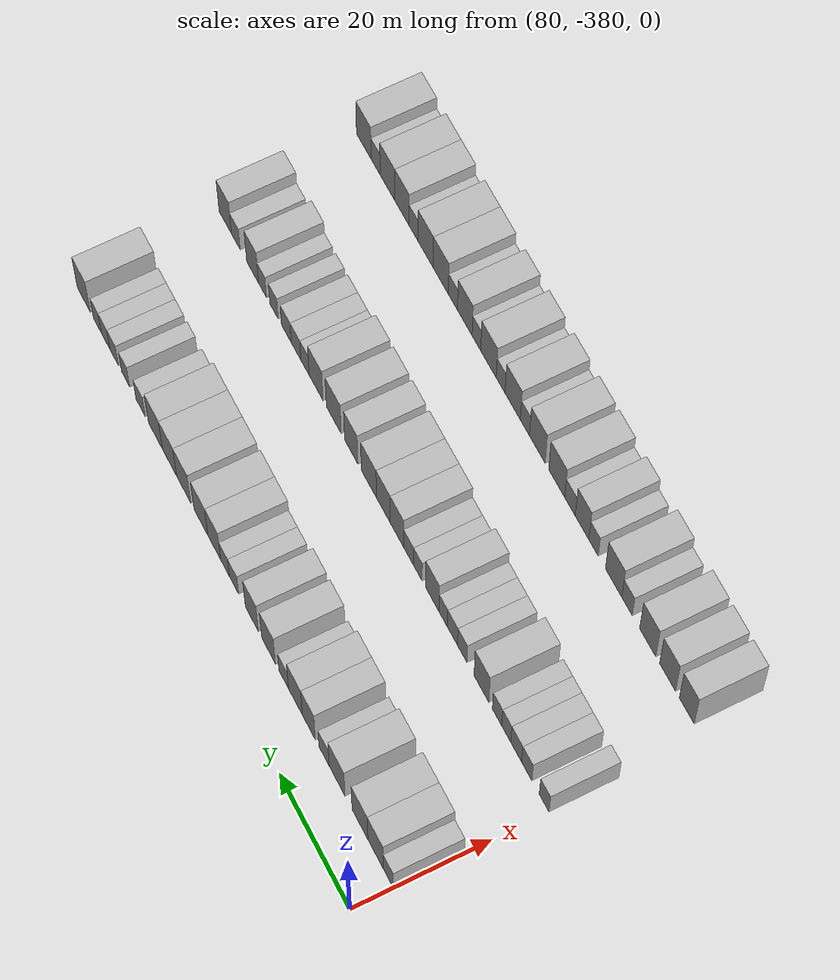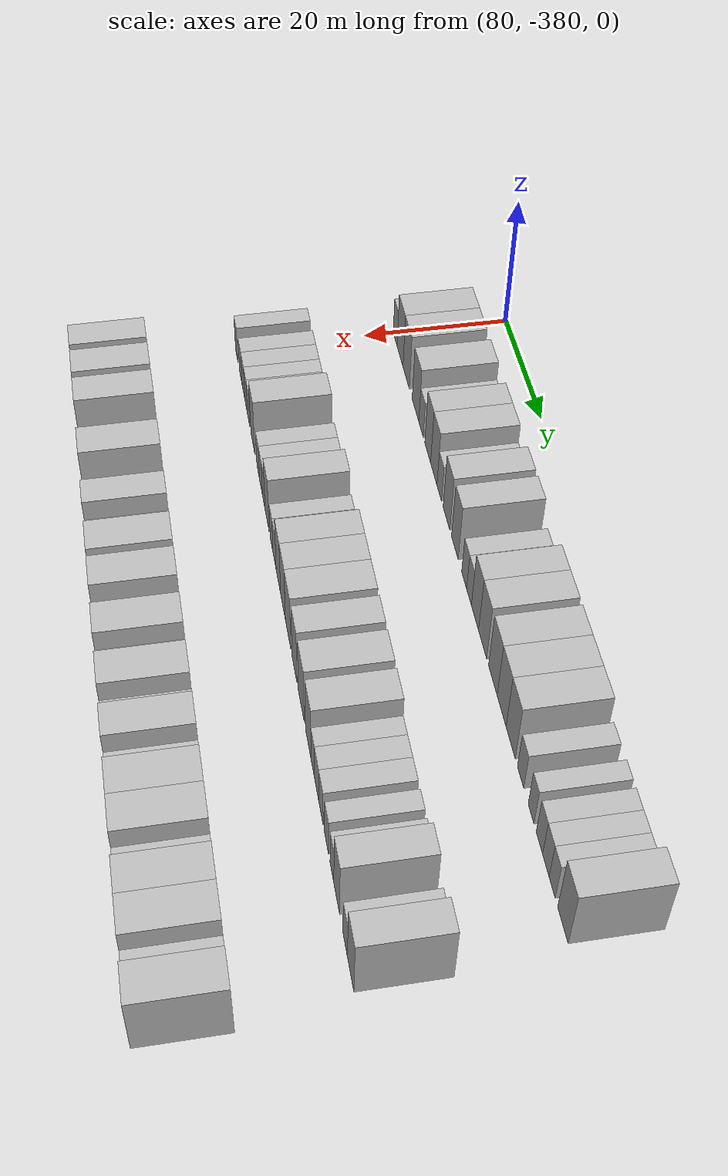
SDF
<sdf version="1.6">
 <world name="default">
  <model name="building_583">
   <static>1</static>
   <pose>91.0000 -378.6105 0 0.000000 0.000000 0.000000</pose>
   <link name="link">
    <pose>0 0 3.00 0 0 0</pose>
    <collision name="collision"><geometry><box><size>10.0000 2.7789 6.0000</size></box></geometry></collision>
    <visual name="visual">
     <cast_shadows>0</cast_shadows>
     <geometry><box><size>10.0000 2.7789 6.0000</size></box></geometry>
     <material>
      <script>
       <uri>model://HANNAS_wall/materials/scripts</uri>
       <uri>model://HANNAS_wall/materials/textures</uri>
       <name>vrc/HANNAS_wall</name>
      </script>
     </material>
    </visual>
   </link>
  </model>
  <model name="building_584">
   <static>1</static>
   <pose>91.0000 -375.0610 0 0.000000 0.000000 0.000000</pose>
   <link name="link">
    <pose>0 0 4.50 0 0 0</pose>
    <collision name="collision"><geometry><box><size>10.0000 4.3202 9.0000</size></box></geometry></collision>
    <visual name="visual">
     <cast_shadows>0</cast_shadows>
     <geometry><box><size>10.0000 4.3202 9.0000</size></box></geometry>
     <material>
      <script>
       <uri>model://HANNAS_wall/materials/scripts</uri>
       <uri>model://HANNAS_wall/materials/textures</uri>
       <name>vrc/HANNAS_wall</name>
      </script>
     </material>
    </visual>
   </link>
  </model>
  <model name="building_585">
   <static>1</static>
   <pose>91.0000 -370.6846 0 0.000000 0.000000 0.000000</pose>
   <link name="link">
    <pose>0 0 4.50 0 0 0</pose>
    <collision name="collision"><geometry><box><size>10.0000 4.4327 9.0000</size></box></geometry></collision>
    <visual name="visual">
     <cast_shadows>0</cast_shadows>
     <geometry><box><size>10.0000 4.4327 9.0000</size></box></geometry>
     <material>
      <script>
       <uri>model://HANNAS_wall/materials/scripts</uri>
       <uri>model://HANNAS_wall/materials/textures</uri>
       <name>vrc/HANNAS_wall</name>
      </script>
     </material>
    </visual>
   </link>
  </model>
  <model name="building_586">
   <static>1</static>
   <pose>91.0000 -364.2207 0 0.000000 0.000000 0.000000</pose>
   <link name="link">
    <pose>0 0 4.50 0 0 0</pose>
    <collision name="collision"><geometry><box><size>10.0000 4.4950 9.0000</size></box></geometry></collision>
    <visual name="visual">
     <cast_shadows>0</cast_shadows>
     <geometry><box><size>10.0000 4.4950 9.0000</size></box></geometry>
     <material>
      <script>
       <uri>model://HANNAS_wall/materials/scripts</uri>
       <uri>model://HANNAS_wall/materials/textures</uri>
       <name>vrc/HANNAS_wall</name>
      </script>
     </material>
    </visual>
   </link>
  </model>
  <model name="building_587">
   <static>1</static>
   <pose>91.0000 -360.5055 0 0.000000 0.000000 0.000000</pose>
   <link name="link">
    <pose>0 0 3.00 0 0 0</pose>
    <collision name="collision"><geometry><box><size>10.0000 2.9354 6.0000</size></box></geometry></collision>
    <visual name="visual">
     <cast_shadows>0</cast_shadows>
     <geometry><box><size>10.0000 2.9354 6.0000</size></box></geometry>
     <material>
      <script>
       <uri>model://HANNAS_wall/materials/scripts</uri>
       <uri>model://HANNAS_wall/materials/textures</uri>
       <name>vrc/HANNAS_wall</name>
      </script>
     </material>
    </visual>
   </link>
  </model>
  <model name="building_588">
   <static>1</static>
   <pose>91.0000 -356.1719 0 0.000000 0.000000 0.000000</pose>
   <link name="link">
    <pose>0 0 4.50 0 0 0</pose>
    <collision name="collision"><geometry><box><size>10.0000 3.7318 9.0000</size></box></geometry></collision>
    <visual name="visual">
     <cast_shadows>0</cast_shadows>
     <geometry><box><size>10.0000 3.7318 9.0000</size></box></geometry>
     <material>
      <script>
       <uri>model://HANNAS_wall/materials/scripts</uri>
       <uri>model://HANNAS_wall/materials/textures</uri>
       <name>vrc/HANNAS_wall</name>
      </script>
     </material>
    </visual>
   </link>
  </model>
  <model name="building_589">
   <static>1</static>
   <pose>91.0000 -352.3022 0 0.000000 0.000000 0.000000</pose>
   <link name="link">
    <pose>0 0 4.50 0 0 0</pose>
    <collision name="collision"><geometry><box><size>10.0000 4.0078 9.0000</size></box></geometry></collision>
    <visual name="visual">
     <cast_shadows>0</cast_shadows>
     <geometry><box><size>10.0000 4.0078 9.0000</size></box></geometry>
     <material>
      <script>
       <uri>model://HANNAS_wall/materials/scripts</uri>
       <uri>model://HANNAS_wall/materials/textures</uri>
       <name>vrc/HANNAS_wall</name>
      </script>
     </material>
    </visual>
   </link>
  </model>
  <model name="building_590">
   <static>1</static>
   <pose>91.0000 -348.8985 0 0.000000 0.000000 0.000000</pose>
   <link name="link">
    <pose>0 0 3.00 0 0 0</pose>
    <collision name="collision"><geometry><box><size>10.0000 2.7997 6.0000</size></box></geometry></collision>
    <visual name="visual">
     <cast_shadows>0</cast_shadows>
     <geometry><box><size>10.0000 2.7997 6.0000</size></box></geometry>
     <material>
      <script>
       <uri>model://HANNAS_wall/materials/scripts</uri>
       <uri>model://HANNAS_wall/materials/textures</uri>
       <name>vrc/HANNAS_wall</name>
      </script>
     </material>
    </visual>
   </link>
  </model>
  <model name="building_591">
   <static>1</static>
   <pose>91.0000 -344.4958 0 0.000000 0.000000 0.000000</pose>
   <link name="link">
    <pose>0 0 4.50 0 0 0</pose>
    <collision name="collision"><geometry><box><size>10.0000 4.0057 9.0000</size></box></geometry></collision>
    <visual name="visual">
     <cast_shadows>0</cast_shadows>
     <geometry><box><size>10.0000 4.0057 9.0000</size></box></geometry>
     <material>
      <script>
       <uri>model://HANNAS_wall/materials/scripts</uri>
       <uri>model://HANNAS_wall/materials/textures</uri>
       <name>vrc/HANNAS_wall</name>
      </script>
     </material>
    </visual>
   </link>
  </model>
  <model name="building_592">
   <static>1</static>
   <pose>91.0000 -339.5777 0 0.000000 0.000000 0.000000</pose>
   <link name="link">
    <pose>0 0 4.50 0 0 0</pose>
    <collision name="collision"><geometry><box><size>10.0000 3.8304 9.0000</size></box></geometry></collision>
    <visual name="visual">
     <cast_shadows>0</cast_shadows>
     <geometry><box><size>10.0000 3.8304 9.0000</size></box></geometry>
     <material>
      <script>
       <uri>model://HANNAS_wall/materials/scripts</uri>
       <uri>model://HANNAS_wall/materials/textures</uri>
       <name>vrc/HANNAS_wall</name>
      </script>
     </material>
    </visual>
   </link>
  </model>
  <model name="building_593">
   <static>1</static>
   <pose>91.0000 -334.2949 0 0.000000 0.000000 0.000000</pose>
   <link name="link">
    <pose>0 0 3.00 0 0 0</pose>
    <collision name="collision"><geometry><box><size>10.0000 2.7351 6.0000</size></box></geometry></collision>
    <visual name="visual">
     <cast_shadows>0</cast_shadows>
     <geometry><box><size>10.0000 2.7351 6.0000</size></box></geometry>
     <material>
      <script>
       <uri>model://HANNAS_wall/materials/scripts</uri>
       <uri>model://HANNAS_wall/materials/textures</uri>
       <name>vrc/HANNAS_wall</name>
      </script>
     </material>
    </visual>
   </link>
  </model>
  <model name="building_594">
   <static>1</static>
   <pose>91.0000 -331.6279 0 0.000000 0.000000 0.000000</pose>
   <link name="link">
    <pose>0 0 3.00 0 0 0</pose>
    <collision name="collision"><geometry><box><size>10.0000 2.5988 6.0000</size></box></geometry></collision>
    <visual name="visual">
     <cast_shadows>0</cast_shadows>
     <geometry><box><size>10.0000 2.5988 6.0000</size></box></geometry>
     <material>
      <script>
       <uri>model://HANNAS_wall/materials/scripts</uri>
       <uri>model://HANNAS_wall/materials/textures</uri>
       <name>vrc/HANNAS_wall</name>
      </script>
     </material>
    </visual>
   </link>
  </model>
  <model name="building_595">
   <static>1</static>
   <pose>91.0000 -328.4108 0 0.000000 0.000000 0.000000</pose>
   <link name="link">
    <pose>0 0 4.50 0 0 0</pose>
    <collision name="collision"><geometry><box><size>10.0000 3.8354 9.0000</size></box></geometry></collision>
    <visual name="visual">
     <cast_shadows>0</cast_shadows>
     <geometry><box><size>10.0000 3.8354 9.0000</size></box></geometry>
     <material>
      <script>
       <uri>model://HANNAS_wall/materials/scripts</uri>
       <uri>model://HANNAS_wall/materials/textures</uri>
       <name>vrc/HANNAS_wall</name>
      </script>
     </material>
    </visual>
   </link>
  </model>
  <model name="building_596">
   <static>1</static>
   <pose>91.0000 -324.3855 0 0.000000 0.000000 0.000000</pose>
   <link name="link">
    <pose>0 0 4.50 0 0 0</pose>
    <collision name="collision"><geometry><box><size>10.0000 4.2151 9.0000</size></box></geometry></collision>
    <visual name="visual">
     <cast_shadows>0</cast_shadows>
     <geometry><box><size>10.0000 4.2151 9.0000</size></box></geometry>
     <material>
      <script>
       <uri>model://HANNAS_wall/materials/scripts</uri>
       <uri>model://HANNAS_wall/materials/textures</uri>
       <name>vrc/HANNAS_wall</name>
      </script>
     </material>
    </visual>
   </link>
  </model>
  <model name="building_597">
   <static>1</static>
   <pose>91.0000 -319.1344 0 0.000000 0.000000 0.000000</pose>
   <link name="link">
    <pose>0 0 4.50 0 0 0</pose>
    <collision name="collision"><geometry><box><size>10.0000 4.2870 9.0000</size></box></geometry></collision>
    <visual name="visual">
     <cast_shadows>0</cast_shadows>
     <geometry><box><size>10.0000 4.2870 9.0000</size></box></geometry>
     <material>
      <script>
       <uri>model://HANNAS_wall/materials/scripts</uri>
       <uri>model://HANNAS_wall/materials/textures</uri>
       <name>vrc/HANNAS_wall</name>
      </script>
     </material>
    </visual>
   </link>
  </model>
  <model name="building_598">
   <static>1</static>
   <pose>91.0000 -314.8249 0 0.000000 0.000000 0.000000</pose>
   <link name="link">
    <pose>0 0 4.50 0 0 0</pose>
    <collision name="collision"><geometry><box><size>10.0000 4.3320 9.0000</size></box></geometry></collision>
    <visual name="visual">
     <cast_shadows>0</cast_shadows>
     <geometry><box><size>10.0000 4.3320 9.0000</size></box></geometry>
     <material>
      <script>
       <uri>model://HANNAS_wall/materials/scripts</uri>
       <uri>model://HANNAS_wall/materials/textures</uri>
       <name>vrc/HANNAS_wall</name>
      </script>
     </material>
    </visual>
   </link>
  </model>
  <model name="building_599">
   <static>1</static>
   <pose>91.0000 -310.4921 0 0.000000 0.000000 0.000000</pose>
   <link name="link">
    <pose>0 0 4.50 0 0 0</pose>
    <collision name="collision"><geometry><box><size>10.0000 4.3336 9.0000</size></box></geometry></collision>
    <visual name="visual">
     <cast_shadows>0</cast_shadows>
     <geometry><box><size>10.0000 4.3336 9.0000</size></box></geometry>
     <material>
      <script>
       <uri>model://HANNAS_wall/materials/scripts</uri>
       <uri>model://HANNAS_wall/materials/textures</uri>
       <name>vrc/HANNAS_wall</name>
      </script>
     </material>
    </visual>
   </link>
  </model>
  <model name="building_600">
   <static>1</static>
   <pose>91.0000 -305.9015 0 0.000000 0.000000 0.000000</pose>
   <link name="link">
    <pose>0 0 3.00 0 0 0</pose>
    <collision name="collision"><geometry><box><size>10.0000 2.8478 6.0000</size></box></geometry></collision>
    <visual name="visual">
     <cast_shadows>0</cast_shadows>
     <geometry><box><size>10.0000 2.8478 6.0000</size></box></geometry>
     <material>
      <script>
       <uri>model://HANNAS_wall/materials/scripts</uri>
       <uri>model://HANNAS_wall/materials/textures</uri>
       <name>vrc/HANNAS_wall</name>
      </script>
     </material>
    </visual>
   </link>
  </model>
  <model name="building_601">
   <static>1</static>
   <pose>91.0000 -301.2275 0 0.000000 0.000000 0.000000</pose>
   <link name="link">
    <pose>0 0 3.00 0 0 0</pose>
    <collision name="collision"><geometry><box><size>10.0000 2.5003 6.0000</size></box></geometry></collision>
    <visual name="visual">
     <cast_shadows>0</cast_shadows>
     <geometry><box><size>10.0000 2.5003 6.0000</size></box></geometry>
     <material>
      <script>
       <uri>model://HANNAS_wall/materials/scripts</uri>
       <uri>model://HANNAS_wall/materials/textures</uri>
       <name>vrc/HANNAS_wall</name>
      </script>
     </material>
    </visual>
   </link>
  </model>
  <model name="building_602">
   <static>1</static>
   <pose>91.0000 -297.6307 0 0.000000 0.000000 0.000000</pose>
   <link name="link">
    <pose>0 0 3.00 0 0 0</pose>
    <collision name="collision"><geometry><box><size>10.0000 2.6932 6.0000</size></box></geometry></collision>
    <visual name="visual">
     <cast_shadows>0</cast_shadows>
     <geometry><box><size>10.0000 2.6932 6.0000</size></box></geometry>
     <material>
      <script>
       <uri>model://HANNAS_wall/materials/scripts</uri>
       <uri>model://HANNAS_wall/materials/textures</uri>
       <name>vrc/HANNAS_wall</name>
      </script>
     </material>
    </visual>
   </link>
  </model>
  <model name="building_603">
   <static>1</static>
   <pose>91.0000 -294.9295 0 0.000000 0.000000 0.000000</pose>
   <link name="link">
    <pose>0 0 3.00 0 0 0</pose>
    <collision name="collision"><geometry><box><size>10.0000 2.7093 6.0000</size></box></geometry></collision>
    <visual name="visual">
     <cast_shadows>0</cast_shadows>
     <geometry><box><size>10.0000 2.7093 6.0000</size></box></geometry>
     <material>
      <script>
       <uri>model://HANNAS_wall/materials/scripts</uri>
       <uri>model://HANNAS_wall/materials/textures</uri>
       <name>vrc/HANNAS_wall</name>
      </script>
     </material>
    </visual>
   </link>
  </model>
  <model name="building_604">
   <static>1</static>
   <pose>91.0000 -292.3316 0 0.000000 0.000000 0.000000</pose>
   <link name="link">
    <pose>0 0 3.00 0 0 0</pose>
    <collision name="collision"><geometry><box><size>10.0000 2.4865 6.0000</size></box></geometry></collision>
    <visual name="visual">
     <cast_shadows>0</cast_shadows>
     <geometry><box><size>10.0000 2.4865 6.0000</size></box></geometry>
     <material>
      <script>
       <uri>model://HANNAS_wall/materials/scripts</uri>
       <uri>model://HANNAS_wall/materials/textures</uri>
       <name>vrc/HANNAS_wall</name>
      </script>
     </material>
    </visual>
   </link>
  </model>
  <model name="building_605">
   <static>1</static>
   <pose>91.0000 -288.0109 0 0.000000 0.000000 0.000000</pose>
   <link name="link">
    <pose>0 0 4.50 0 0 0</pose>
    <collision name="collision"><geometry><box><size>10.0000 4.1550 9.0000</size></box></geometry></collision>
    <visual name="visual">
     <cast_shadows>0</cast_shadows>
     <geometry><box><size>10.0000 4.1550 9.0000</size></box></geometry>
     <material>
      <script>
       <uri>model://HANNAS_wall/materials/scripts</uri>
       <uri>model://HANNAS_wall/materials/textures</uri>
       <name>vrc/HANNAS_wall</name>
      </script>
     </material>
    </visual>
   </link>
  </model>
  <model name="building_785">
   <static>1</static>
   <pose>113.0000 -378.6783 0 0.000000 0.000000 0.000000</pose>
   <link name="link">
    <pose>0 0 3.00 0 0 0</pose>
    <collision name="collision"><geometry><box><size>10.0000 2.6433 6.0000</size></box></geometry></collision>
    <visual name="visual">
     <cast_shadows>0</cast_shadows>
     <geometry><box><size>10.0000 2.6433 6.0000</size></box></geometry>
     <material>
      <script>
       <uri>model://HANNAS_wall/materials/scripts</uri>
       <uri>model://HANNAS_wall/materials/textures</uri>
       <name>vrc/HANNAS_wall</name>
      </script>
     </material>
    </visual>
   </link>
  </model>
  <model name="building_786">
   <static>1</static>
   <pose>113.0000 -373.9568 0 0.000000 0.000000 0.000000</pose>
   <link name="link">
    <pose>0 0 3.00 0 0 0</pose>
    <collision name="collision"><geometry><box><size>10.0000 2.7998 6.0000</size></box></geometry></collision>
    <visual name="visual">
     <cast_shadows>0</cast_shadows>
     <geometry><box><size>10.0000 2.7998 6.0000</size></box></geometry>
     <material>
      <script>
       <uri>model://HANNAS_wall/materials/scripts</uri>
       <uri>model://HANNAS_wall/materials/textures</uri>
       <name>vrc/HANNAS_wall</name>
      </script>
     </material>
    </visual>
   </link>
  </model>
  <model name="building_787">
   <static>1</static>
   <pose>113.0000 -371.0708 0 0.000000 0.000000 0.000000</pose>
   <link name="link">
    <pose>0 0 3.00 0 0 0</pose>
    <collision name="collision"><geometry><box><size>10.0000 2.9720 6.0000</size></box></geometry></collision>
    <visual name="visual">
     <cast_shadows>0</cast_shadows>
     <geometry><box><size>10.0000 2.9720 6.0000</size></box></geometry>
     <material>
      <script>
       <uri>model://HANNAS_wall/materials/scripts</uri>
       <uri>model://HANNAS_wall/materials/textures</uri>
       <name>vrc/HANNAS_wall</name>
      </script>
     </material>
    </visual>
   </link>
  </model>
  <model name="building_788">
   <static>1</static>
   <pose>113.0000 -368.3384 0 0.000000 0.000000 0.000000</pose>
   <link name="link">
    <pose>0 0 3.00 0 0 0</pose>
    <collision name="collision"><geometry><box><size>10.0000 2.4929 6.0000</size></box></geometry></collision>
    <visual name="visual">
     <cast_shadows>0</cast_shadows>
     <geometry><box><size>10.0000 2.4929 6.0000</size></box></geometry>
     <material>
      <script>
       <uri>model://HANNAS_wall/materials/scripts</uri>
       <uri>model://HANNAS_wall/materials/textures</uri>
       <name>vrc/HANNAS_wall</name>
      </script>
     </material>
    </visual>
   </link>
  </model>
  <model name="building_789">
   <static>1</static>
   <pose>113.0000 -365.8127 0 0.000000 0.000000 0.000000</pose>
   <link name="link">
    <pose>0 0 3.00 0 0 0</pose>
    <collision name="collision"><geometry><box><size>10.0000 2.5584 6.0000</size></box></geometry></collision>
    <visual name="visual">
     <cast_shadows>0</cast_shadows>
     <geometry><box><size>10.0000 2.5584 6.0000</size></box></geometry>
     <material>
      <script>
       <uri>model://HANNAS_wall/materials/scripts</uri>
       <uri>model://HANNAS_wall/materials/textures</uri>
       <name>vrc/HANNAS_wall</name>
      </script>
     </material>
    </visual>
   </link>
  </model>
  <model name="building_790">
   <static>1</static>
   <pose>113.0000 -361.4874 0 0.000000 0.000000 0.000000</pose>
   <link name="link">
    <pose>0 0 4.50 0 0 0</pose>
    <collision name="collision"><geometry><box><size>10.0000 4.0921 9.0000</size></box></geometry></collision>
    <visual name="visual">
     <cast_shadows>0</cast_shadows>
     <geometry><box><size>10.0000 4.0921 9.0000</size></box></geometry>
     <material>
      <script>
       <uri>model://HANNAS_wall/materials/scripts</uri>
       <uri>model://HANNAS_wall/materials/textures</uri>
       <name>vrc/HANNAS_wall</name>
      </script>
     </material>
    </visual>
   </link>
  </model>
  <model name="building_791">
   <static>1</static>
   <pose>113.0000 -356.1126 0 0.000000 0.000000 0.000000</pose>
   <link name="link">
    <pose>0 0 3.00 0 0 0</pose>
    <collision name="collision"><geometry><box><size>10.0000 2.6574 6.0000</size></box></geometry></collision>
    <visual name="visual">
     <cast_shadows>0</cast_shadows>
     <geometry><box><size>10.0000 2.6574 6.0000</size></box></geometry>
     <material>
      <script>
       <uri>model://HANNAS_wall/materials/scripts</uri>
       <uri>model://HANNAS_wall/materials/textures</uri>
       <name>vrc/HANNAS_wall</name>
      </script>
     </material>
    </visual>
   </link>
  </model>
  <model name="building_792">
   <static>1</static>
   <pose>113.0000 -353.3888 0 0.000000 0.000000 0.000000</pose>
   <link name="link">
    <pose>0 0 3.00 0 0 0</pose>
    <collision name="collision"><geometry><box><size>10.0000 2.7902 6.0000</size></box></geometry></collision>
    <visual name="visual">
     <cast_shadows>0</cast_shadows>
     <geometry><box><size>10.0000 2.7902 6.0000</size></box></geometry>
     <material>
      <script>
       <uri>model://HANNAS_wall/materials/scripts</uri>
       <uri>model://HANNAS_wall/materials/textures</uri>
       <name>vrc/HANNAS_wall</name>
      </script>
     </material>
    </visual>
   </link>
  </model>
  <model name="building_793">
   <static>1</static>
   <pose>113.0000 -350.7905 0 0.000000 0.000000 0.000000</pose>
   <link name="link">
    <pose>0 0 3.00 0 0 0</pose>
    <collision name="collision"><geometry><box><size>10.0000 2.4065 6.0000</size></box></geometry></collision>
    <visual name="visual">
     <cast_shadows>0</cast_shadows>
     <geometry><box><size>10.0000 2.4065 6.0000</size></box></geometry>
     <material>
      <script>
       <uri>model://HANNAS_wall/materials/scripts</uri>
       <uri>model://HANNAS_wall/materials/textures</uri>
       <name>vrc/HANNAS_wall</name>
      </script>
     </material>
    </visual>
   </link>
  </model>
  <model name="building_794">
   <static>1</static>
   <pose>113.0000 -347.6837 0 0.000000 0.000000 0.000000</pose>
   <link name="link">
    <pose>0 0 4.50 0 0 0</pose>
    <collision name="collision"><geometry><box><size>10.0000 3.8071 9.0000</size></box></geometry></collision>
    <visual name="visual">
     <cast_shadows>0</cast_shadows>
     <geometry><box><size>10.0000 3.8071 9.0000</size></box></geometry>
     <material>
      <script>
       <uri>model://HANNAS_wall/materials/scripts</uri>
       <uri>model://HANNAS_wall/materials/textures</uri>
       <name>vrc/HANNAS_wall</name>
      </script>
     </material>
    </visual>
   </link>
  </model>
  <model name="building_795">
   <static>1</static>
   <pose>113.0000 -343.5592 0 0.000000 0.000000 0.000000</pose>
   <link name="link">
    <pose>0 0 3.00 0 0 0</pose>
    <collision name="collision"><geometry><box><size>10.0000 2.4420 6.0000</size></box></geometry></collision>
    <visual name="visual">
     <cast_shadows>0</cast_shadows>
     <geometry><box><size>10.0000 2.4420 6.0000</size></box></geometry>
     <material>
      <script>
       <uri>model://HANNAS_wall/materials/scripts</uri>
       <uri>model://HANNAS_wall/materials/textures</uri>
       <name>vrc/HANNAS_wall</name>
      </script>
     </material>
    </visual>
   </link>
  </model>
  <model name="building_796">
   <static>1</static>
   <pose>113.0000 -340.9144 0 0.000000 0.000000 0.000000</pose>
   <link name="link">
    <pose>0 0 3.00 0 0 0</pose>
    <collision name="collision"><geometry><box><size>10.0000 2.8476 6.0000</size></box></geometry></collision>
    <visual name="visual">
     <cast_shadows>0</cast_shadows>
     <geometry><box><size>10.0000 2.8476 6.0000</size></box></geometry>
     <material>
      <script>
       <uri>model://HANNAS_wall/materials/scripts</uri>
       <uri>model://HANNAS_wall/materials/textures</uri>
       <name>vrc/HANNAS_wall</name>
      </script>
     </material>
    </visual>
   </link>
  </model>
  <model name="building_797">
   <static>1</static>
   <pose>113.0000 -337.5703 0 0.000000 0.000000 0.000000</pose>
   <link name="link">
    <pose>0 0 4.50 0 0 0</pose>
    <collision name="collision"><geometry><box><size>10.0000 3.8406 9.0000</size></box></geometry></collision>
    <visual name="visual">
     <cast_shadows>0</cast_shadows>
     <geometry><box><size>10.0000 3.8406 9.0000</size></box></geometry>
     <material>
      <script>
       <uri>model://HANNAS_wall/materials/scripts</uri>
       <uri>model://HANNAS_wall/materials/textures</uri>
       <name>vrc/HANNAS_wall</name>
      </script>
     </material>
    </visual>
   </link>
  </model>
  <model name="building_798">
   <static>1</static>
   <pose>113.0000 -333.6425 0 0.000000 0.000000 0.000000</pose>
   <link name="link">
    <pose>0 0 4.50 0 0 0</pose>
    <collision name="collision"><geometry><box><size>10.0000 4.0149 9.0000</size></box></geometry></collision>
    <visual name="visual">
     <cast_shadows>0</cast_shadows>
     <geometry><box><size>10.0000 4.0149 9.0000</size></box></geometry>
     <material>
      <script>
       <uri>model://HANNAS_wall/materials/scripts</uri>
       <uri>model://HANNAS_wall/materials/textures</uri>
       <name>vrc/HANNAS_wall</name>
      </script>
     </material>
    </visual>
   </link>
  </model>
  <model name="building_799">
   <static>1</static>
   <pose>113.0000 -329.4220 0 0.000000 0.000000 0.000000</pose>
   <link name="link">
    <pose>0 0 4.50 0 0 0</pose>
    <collision name="collision"><geometry><box><size>10.0000 4.4261 9.0000</size></box></geometry></collision>
    <visual name="visual">
     <cast_shadows>0</cast_shadows>
     <geometry><box><size>10.0000 4.4261 9.0000</size></box></geometry>
     <material>
      <script>
       <uri>model://HANNAS_wall/materials/scripts</uri>
       <uri>model://HANNAS_wall/materials/textures</uri>
       <name>vrc/HANNAS_wall</name>
      </script>
     </material>
    </visual>
   </link>
  </model>
  <model name="building_800">
   <static>1</static>
   <pose>113.0000 -324.2468 0 0.000000 0.000000 0.000000</pose>
   <link name="link">
    <pose>0 0 4.50 0 0 0</pose>
    <collision name="collision"><geometry><box><size>10.0000 3.9243 9.0000</size></box></geometry></collision>
    <visual name="visual">
     <cast_shadows>0</cast_shadows>
     <geometry><box><size>10.0000 3.9243 9.0000</size></box></geometry>
     <material>
      <script>
       <uri>model://HANNAS_wall/materials/scripts</uri>
       <uri>model://HANNAS_wall/materials/textures</uri>
       <name>vrc/HANNAS_wall</name>
      </script>
     </material>
    </visual>
   </link>
  </model>
  <model name="building_801">
   <static>1</static>
   <pose>113.0000 -319.0873 0 0.000000 0.000000 0.000000</pose>
   <link name="link">
    <pose>0 0 4.50 0 0 0</pose>
    <collision name="collision"><geometry><box><size>10.0000 4.3948 9.0000</size></box></geometry></collision>
    <visual name="visual">
     <cast_shadows>0</cast_shadows>
     <geometry><box><size>10.0000 4.3948 9.0000</size></box></geometry>
     <material>
      <script>
       <uri>model://HANNAS_wall/materials/scripts</uri>
       <uri>model://HANNAS_wall/materials/textures</uri>
       <name>vrc/HANNAS_wall</name>
      </script>
     </material>
    </visual>
   </link>
  </model>
  <model name="building_802">
   <static>1</static>
   <pose>113.0000 -313.8123 0 0.000000 0.000000 0.000000</pose>
   <link name="link">
    <pose>0 0 4.50 0 0 0</pose>
    <collision name="collision"><geometry><box><size>10.0000 4.1552 9.0000</size></box></geometry></collision>
    <visual name="visual">
     <cast_shadows>0</cast_shadows>
     <geometry><box><size>10.0000 4.1552 9.0000</size></box></geometry>
     <material>
      <script>
       <uri>model://HANNAS_wall/materials/scripts</uri>
       <uri>model://HANNAS_wall/materials/textures</uri>
       <name>vrc/HANNAS_wall</name>
      </script>
     </material>
    </visual>
   </link>
  </model>
  <model name="building_803">
   <static>1</static>
   <pose>113.0000 -310.4940 0 0.000000 0.000000 0.000000</pose>
   <link name="link">
    <pose>0 0 3.00 0 0 0</pose>
    <collision name="collision"><geometry><box><size>10.0000 2.4814 6.0000</size></box></geometry></collision>
    <visual name="visual">
     <cast_shadows>0</cast_shadows>
     <geometry><box><size>10.0000 2.4814 6.0000</size></box></geometry>
     <material>
      <script>
       <uri>model://HANNAS_wall/materials/scripts</uri>
       <uri>model://HANNAS_wall/materials/textures</uri>
       <name>vrc/HANNAS_wall</name>
      </script>
     </material>
    </visual>
   </link>
  </model>
  <model name="building_804">
   <static>1</static>
   <pose>113.0000 -307.7987 0 0.000000 0.000000 0.000000</pose>
   <link name="link">
    <pose>0 0 3.00 0 0 0</pose>
    <collision name="collision"><geometry><box><size>10.0000 2.9092 6.0000</size></box></geometry></collision>
    <visual name="visual">
     <cast_shadows>0</cast_shadows>
     <geometry><box><size>10.0000 2.9092 6.0000</size></box></geometry>
     <material>
      <script>
       <uri>model://HANNAS_wall/materials/scripts</uri>
       <uri>model://HANNAS_wall/materials/textures</uri>
       <name>vrc/HANNAS_wall</name>
      </script>
     </material>
    </visual>
   </link>
  </model>
  <model name="building_805">
   <static>1</static>
   <pose>113.0000 -304.8636 0 0.000000 0.000000 0.000000</pose>
   <link name="link">
    <pose>0 0 3.00 0 0 0</pose>
    <collision name="collision"><geometry><box><size>10.0000 2.9610 6.0000</size></box></geometry></collision>
    <visual name="visual">
     <cast_shadows>0</cast_shadows>
     <geometry><box><size>10.0000 2.9610 6.0000</size></box></geometry>
     <material>
      <script>
       <uri>model://HANNAS_wall/materials/scripts</uri>
       <uri>model://HANNAS_wall/materials/textures</uri>
       <name>vrc/HANNAS_wall</name>
      </script>
     </material>
    </visual>
   </link>
  </model>
  <model name="building_806">
   <static>1</static>
   <pose>113.0000 -301.1024 0 0.000000 0.000000 0.000000</pose>
   <link name="link">
    <pose>0 0 3.00 0 0 0</pose>
    <collision name="collision"><geometry><box><size>10.0000 2.5613 6.0000</size></box></geometry></collision>
    <visual name="visual">
     <cast_shadows>0</cast_shadows>
     <geometry><box><size>10.0000 2.5613 6.0000</size></box></geometry>
     <material>
      <script>
       <uri>model://HANNAS_wall/materials/scripts</uri>
       <uri>model://HANNAS_wall/materials/textures</uri>
       <name>vrc/HANNAS_wall</name>
      </script>
     </material>
    </visual>
   </link>
  </model>
  <model name="building_807">
   <static>1</static>
   <pose>113.0000 -297.6050 0 0.000000 0.000000 0.000000</pose>
   <link name="link">
    <pose>0 0 3.00 0 0 0</pose>
    <collision name="collision"><geometry><box><size>10.0000 2.4337 6.0000</size></box></geometry></collision>
    <visual name="visual">
     <cast_shadows>0</cast_shadows>
     <geometry><box><size>10.0000 2.4337 6.0000</size></box></geometry>
     <material>
      <script>
       <uri>model://HANNAS_wall/materials/scripts</uri>
       <uri>model://HANNAS_wall/materials/textures</uri>
       <name>vrc/HANNAS_wall</name>
      </script>
     </material>
    </visual>
   </link>
  </model>
  <model name="building_808">
   <static>1</static>
   <pose>113.0000 -294.5605 0 0.000000 0.000000 0.000000</pose>
   <link name="link">
    <pose>0 0 4.50 0 0 0</pose>
    <collision name="collision"><geometry><box><size>10.0000 3.6553 9.0000</size></box></geometry></collision>
    <visual name="visual">
     <cast_shadows>0</cast_shadows>
     <geometry><box><size>10.0000 3.6553 9.0000</size></box></geometry>
     <material>
      <script>
       <uri>model://HANNAS_wall/materials/scripts</uri>
       <uri>model://HANNAS_wall/materials/textures</uri>
       <name>vrc/HANNAS_wall</name>
      </script>
     </material>
    </visual>
   </link>
  </model>
  <model name="building_809">
   <static>1</static>
   <pose>113.0000 -289.3678 0 0.000000 0.000000 0.000000</pose>
   <link name="link">
    <pose>0 0 3.00 0 0 0</pose>
    <collision name="collision"><geometry><box><size>10.0000 2.7301 6.0000</size></box></geometry></collision>
    <visual name="visual">
     <cast_shadows>0</cast_shadows>
     <geometry><box><size>10.0000 2.7301 6.0000</size></box></geometry>
     <material>
      <script>
       <uri>model://HANNAS_wall/materials/scripts</uri>
       <uri>model://HANNAS_wall/materials/textures</uri>
       <name>vrc/HANNAS_wall</name>
      </script>
     </material>
    </visual>
   </link>
  </model>
  <model name="building_810">
   <static>1</static>
   <pose>113.0000 -286.1017 0 0.000000 0.000000 0.000000</pose>
   <link name="link">
    <pose>0 0 4.50 0 0 0</pose>
    <collision name="collision"><geometry><box><size>10.0000 3.8020 9.0000</size></box></geometry></collision>
    <visual name="visual">
     <cast_shadows>0</cast_shadows>
     <geometry><box><size>10.0000 3.8020 9.0000</size></box></geometry>
     <material>
      <script>
       <uri>model://HANNAS_wall/materials/scripts</uri>
       <uri>model://HANNAS_wall/materials/textures</uri>
       <name>vrc/HANNAS_wall</name>
      </script>
     </material>
    </visual>
   </link>
  </model>
  <model name="building_983">
   <static>1</static>
   <pose>135.0000 -376.0127 0 0.000000 0.000000 0.000000</pose>
   <link name="link">
    <pose>0 0 4.50 0 0 0</pose>
    <collision name="collision"><geometry><box><size>10.0000 3.9745 9.0000</size></box></geometry></collision>
    <visual name="visual">
     <cast_shadows>0</cast_shadows>
     <geometry><box><size>10.0000 3.9745 9.0000</size></box></geometry>
     <material>
      <script>
       <uri>model://HANNAS_wall/materials/scripts</uri>
       <uri>model://HANNAS_wall/materials/textures</uri>
       <name>vrc/HANNAS_wall</name>
      </script>
     </material>
    </visual>
   </link>
  </model>
  <model name="building_984">
   <static>1</static>
   <pose>135.0000 -370.8851 0 0.000000 0.000000 0.000000</pose>
   <link name="link">
    <pose>0 0 4.50 0 0 0</pose>
    <collision name="collision"><geometry><box><size>10.0000 4.2808 9.0000</size></box></geometry></collision>
    <visual name="visual">
     <cast_shadows>0</cast_shadows>
     <geometry><box><size>10.0000 4.2808 9.0000</size></box></geometry>
     <material>
      <script>
       <uri>model://HANNAS_wall/materials/scripts</uri>
       <uri>model://HANNAS_wall/materials/textures</uri>
       <name>vrc/HANNAS_wall</name>
      </script>
     </material>
    </visual>
   </link>
  </model>
  <model name="building_985">
   <static>1</static>
   <pose>135.0000 -365.5586 0 0.000000 0.000000 0.000000</pose>
   <link name="link">
    <pose>0 0 4.50 0 0 0</pose>
    <collision name="collision"><geometry><box><size>10.0000 4.3721 9.0000</size></box></geometry></collision>
    <visual name="visual">
     <cast_shadows>0</cast_shadows>
     <geometry><box><size>10.0000 4.3721 9.0000</size></box></geometry>
     <material>
      <script>
       <uri>model://HANNAS_wall/materials/scripts</uri>
       <uri>model://HANNAS_wall/materials/textures</uri>
       <name>vrc/HANNAS_wall</name>
      </script>
     </material>
    </visual>
   </link>
  </model>
  <model name="building_986">
   <static>1</static>
   <pose>135.0000 -359.9449 0 0.000000 0.000000 0.000000</pose>
   <link name="link">
    <pose>0 0 3.00 0 0 0</pose>
    <collision name="collision"><geometry><box><size>10.0000 2.8552 6.0000</size></box></geometry></collision>
    <visual name="visual">
     <cast_shadows>0</cast_shadows>
     <geometry><box><size>10.0000 2.8552 6.0000</size></box></geometry>
     <material>
      <script>
       <uri>model://HANNAS_wall/materials/scripts</uri>
       <uri>model://HANNAS_wall/materials/textures</uri>
       <name>vrc/HANNAS_wall</name>
      </script>
     </material>
    </visual>
   </link>
  </model>
  <model name="building_987">
   <static>1</static>
   <pose>135.0000 -356.2793 0 0.000000 0.000000 0.000000</pose>
   <link name="link">
    <pose>0 0 4.50 0 0 0</pose>
    <collision name="collision"><geometry><box><size>10.0000 4.4761 9.0000</size></box></geometry></collision>
    <visual name="visual">
     <cast_shadows>0</cast_shadows>
     <geometry><box><size>10.0000 4.4761 9.0000</size></box></geometry>
     <material>
      <script>
       <uri>model://HANNAS_wall/materials/scripts</uri>
       <uri>model://HANNAS_wall/materials/textures</uri>
       <name>vrc/HANNAS_wall</name>
      </script>
     </material>
    </visual>
   </link>
  </model>
  <model name="building_988">
   <static>1</static>
   <pose>135.0000 -350.7513 0 0.000000 0.000000 0.000000</pose>
   <link name="link">
    <pose>0 0 3.00 0 0 0</pose>
    <collision name="collision"><geometry><box><size>10.0000 2.5799 6.0000</size></box></geometry></collision>
    <visual name="visual">
     <cast_shadows>0</cast_shadows>
     <geometry><box><size>10.0000 2.5799 6.0000</size></box></geometry>
     <material>
      <script>
       <uri>model://HANNAS_wall/materials/scripts</uri>
       <uri>model://HANNAS_wall/materials/textures</uri>
       <name>vrc/HANNAS_wall</name>
      </script>
     </material>
    </visual>
   </link>
  </model>
  <model name="building_989">
   <static>1</static>
   <pose>135.0000 -347.5734 0 0.000000 0.000000 0.000000</pose>
   <link name="link">
    <pose>0 0 4.50 0 0 0</pose>
    <collision name="collision"><geometry><box><size>10.0000 3.7757 9.0000</size></box></geometry></collision>
    <visual name="visual">
     <cast_shadows>0</cast_shadows>
     <geometry><box><size>10.0000 3.7757 9.0000</size></box></geometry>
     <material>
      <script>
       <uri>model://HANNAS_wall/materials/scripts</uri>
       <uri>model://HANNAS_wall/materials/textures</uri>
       <name>vrc/HANNAS_wall</name>
      </script>
     </material>
    </visual>
   </link>
  </model>
  <model name="building_990">
   <static>1</static>
   <pose>135.0000 -344.2138 0 0.000000 0.000000 0.000000</pose>
   <link name="link">
    <pose>0 0 3.00 0 0 0</pose>
    <collision name="collision"><geometry><box><size>10.0000 2.9435 6.0000</size></box></geometry></collision>
    <visual name="visual">
     <cast_shadows>0</cast_shadows>
     <geometry><box><size>10.0000 2.9435 6.0000</size></box></geometry>
     <material>
      <script>
       <uri>model://HANNAS_wall/materials/scripts</uri>
       <uri>model://HANNAS_wall/materials/textures</uri>
       <name>vrc/HANNAS_wall</name>
      </script>
     </material>
    </visual>
   </link>
  </model>
  <model name="building_991">
   <static>1</static>
   <pose>135.0000 -340.4957 0 0.000000 0.000000 0.000000</pose>
   <link name="link">
    <pose>0 0 4.50 0 0 0</pose>
    <collision name="collision"><geometry><box><size>10.0000 4.4927 9.0000</size></box></geometry></collision>
    <visual name="visual">
     <cast_shadows>0</cast_shadows>
     <geometry><box><size>10.0000 4.4927 9.0000</size></box></geometry>
     <material>
      <script>
       <uri>model://HANNAS_wall/materials/scripts</uri>
       <uri>model://HANNAS_wall/materials/textures</uri>
       <name>vrc/HANNAS_wall</name>
      </script>
     </material>
    </visual>
   </link>
  </model>
  <model name="building_992">
   <static>1</static>
   <pose>135.0000 -335.0288 0 0.000000 0.000000 0.000000</pose>
   <link name="link">
    <pose>0 0 4.50 0 0 0</pose>
    <collision name="collision"><geometry><box><size>10.0000 4.4411 9.0000</size></box></geometry></collision>
    <visual name="visual">
     <cast_shadows>0</cast_shadows>
     <geometry><box><size>10.0000 4.4411 9.0000</size></box></geometry>
     <material>
      <script>
       <uri>model://HANNAS_wall/materials/scripts</uri>
       <uri>model://HANNAS_wall/materials/textures</uri>
       <name>vrc/HANNAS_wall</name>
      </script>
     </material>
    </visual>
   </link>
  </model>
  <model name="building_993">
   <static>1</static>
   <pose>135.0000 -331.5296 0 0.000000 0.000000 0.000000</pose>
   <link name="link">
    <pose>0 0 3.00 0 0 0</pose>
    <collision name="collision"><geometry><box><size>10.0000 2.5574 6.0000</size></box></geometry></collision>
    <visual name="visual">
     <cast_shadows>0</cast_shadows>
     <geometry><box><size>10.0000 2.5574 6.0000</size></box></geometry>
     <material>
      <script>
       <uri>model://HANNAS_wall/materials/scripts</uri>
       <uri>model://HANNAS_wall/materials/textures</uri>
       <name>vrc/HANNAS_wall</name>
      </script>
     </material>
    </visual>
   </link>
  </model>
  <model name="building_994">
   <static>1</static>
   <pose>135.0000 -328.0541 0 0.000000 0.000000 0.000000</pose>
   <link name="link">
    <pose>0 0 4.50 0 0 0</pose>
    <collision name="collision"><geometry><box><size>10.0000 4.3937 9.0000</size></box></geometry></collision>
    <visual name="visual">
     <cast_shadows>0</cast_shadows>
     <geometry><box><size>10.0000 4.3937 9.0000</size></box></geometry>
     <material>
      <script>
       <uri>model://HANNAS_wall/materials/scripts</uri>
       <uri>model://HANNAS_wall/materials/textures</uri>
       <name>vrc/HANNAS_wall</name>
      </script>
     </material>
    </visual>
   </link>
  </model>
  <model name="building_995">
   <static>1</static>
   <pose>135.0000 -324.5956 0 0.000000 0.000000 0.000000</pose>
   <link name="link">
    <pose>0 0 3.00 0 0 0</pose>
    <collision name="collision"><geometry><box><size>10.0000 2.5231 6.0000</size></box></geometry></collision>
    <visual name="visual">
     <cast_shadows>0</cast_shadows>
     <geometry><box><size>10.0000 2.5231 6.0000</size></box></geometry>
     <material>
      <script>
       <uri>model://HANNAS_wall/materials/scripts</uri>
       <uri>model://HANNAS_wall/materials/textures</uri>
       <name>vrc/HANNAS_wall</name>
      </script>
     </material>
    </visual>
   </link>
  </model>
  <model name="building_996">
   <static>1</static>
   <pose>135.0000 -321.0908 0 0.000000 0.000000 0.000000</pose>
   <link name="link">
    <pose>0 0 4.50 0 0 0</pose>
    <collision name="collision"><geometry><box><size>10.0000 4.4866 9.0000</size></box></geometry></collision>
    <visual name="visual">
     <cast_shadows>0</cast_shadows>
     <geometry><box><size>10.0000 4.4866 9.0000</size></box></geometry>
     <material>
      <script>
       <uri>model://HANNAS_wall/materials/scripts</uri>
       <uri>model://HANNAS_wall/materials/textures</uri>
       <name>vrc/HANNAS_wall</name>
      </script>
     </material>
    </visual>
   </link>
  </model>
  <model name="building_997">
   <static>1</static>
   <pose>135.0000 -317.5913 0 0.000000 0.000000 0.000000</pose>
   <link name="link">
    <pose>0 0 3.00 0 0 0</pose>
    <collision name="collision"><geometry><box><size>10.0000 2.5124 6.0000</size></box></geometry></collision>
    <visual name="visual">
     <cast_shadows>0</cast_shadows>
     <geometry><box><size>10.0000 2.5124 6.0000</size></box></geometry>
     <material>
      <script>
       <uri>model://HANNAS_wall/materials/scripts</uri>
       <uri>model://HANNAS_wall/materials/textures</uri>
       <name>vrc/HANNAS_wall</name>
      </script>
     </material>
    </visual>
   </link>
  </model>
  <model name="building_998">
   <static>1</static>
   <pose>135.0000 -314.2070 0 0.000000 0.000000 0.000000</pose>
   <link name="link">
    <pose>0 0 4.50 0 0 0</pose>
    <collision name="collision"><geometry><box><size>10.0000 4.2562 9.0000</size></box></geometry></collision>
    <visual name="visual">
     <cast_shadows>0</cast_shadows>
     <geometry><box><size>10.0000 4.2562 9.0000</size></box></geometry>
     <material>
      <script>
       <uri>model://HANNAS_wall/materials/scripts</uri>
       <uri>model://HANNAS_wall/materials/textures</uri>
       <name>vrc/HANNAS_wall</name>
      </script>
     </material>
    </visual>
   </link>
  </model>
  <model name="building_999">
   <static>1</static>
   <pose>135.0000 -310.7412 0 0.000000 0.000000 0.000000</pose>
   <link name="link">
    <pose>0 0 3.00 0 0 0</pose>
    <collision name="collision"><geometry><box><size>10.0000 2.6754 6.0000</size></box></geometry></collision>
    <visual name="visual">
     <cast_shadows>0</cast_shadows>
     <geometry><box><size>10.0000 2.6754 6.0000</size></box></geometry>
     <material>
      <script>
       <uri>model://HANNAS_wall/materials/scripts</uri>
       <uri>model://HANNAS_wall/materials/textures</uri>
       <name>vrc/HANNAS_wall</name>
      </script>
     </material>
    </visual>
   </link>
  </model>
  <model name="building_1000">
   <static>1</static>
   <pose>135.0000 -307.1645 0 0.000000 0.000000 0.000000</pose>
   <link name="link">
    <pose>0 0 4.50 0 0 0</pose>
    <collision name="collision"><geometry><box><size>10.0000 4.4780 9.0000</size></box></geometry></collision>
    <visual name="visual">
     <cast_shadows>0</cast_shadows>
     <geometry><box><size>10.0000 4.4780 9.0000</size></box></geometry>
     <material>
      <script>
       <uri>model://HANNAS_wall/materials/scripts</uri>
       <uri>model://HANNAS_wall/materials/textures</uri>
       <name>vrc/HANNAS_wall</name>
      </script>
     </material>
    </visual>
   </link>
  </model>
  <model name="building_1001">
   <static>1</static>
   <pose>135.0000 -302.6915 0 0.000000 0.000000 0.000000</pose>
   <link name="link">
    <pose>0 0 4.50 0 0 0</pose>
    <collision name="collision"><geometry><box><size>10.0000 4.4680 9.0000</size></box></geometry></collision>
    <visual name="visual">
     <cast_shadows>0</cast_shadows>
     <geometry><box><size>10.0000 4.4680 9.0000</size></box></geometry>
     <material>
      <script>
       <uri>model://HANNAS_wall/materials/scripts</uri>
       <uri>model://HANNAS_wall/materials/textures</uri>
       <name>vrc/HANNAS_wall</name>
      </script>
     </material>
    </visual>
   </link>
  </model>
  <model name="building_1002">
   <static>1</static>
   <pose>135.0000 -299.1425 0 0.000000 0.000000 0.000000</pose>
   <link name="link">
    <pose>0 0 3.00 0 0 0</pose>
    <collision name="collision"><geometry><box><size>10.0000 2.6301 6.0000</size></box></geometry></collision>
    <visual name="visual">
     <cast_shadows>0</cast_shadows>
     <geometry><box><size>10.0000 2.6301 6.0000</size></box></geometry>
     <material>
      <script>
       <uri>model://HANNAS_wall/materials/scripts</uri>
       <uri>model://HANNAS_wall/materials/textures</uri>
       <name>vrc/HANNAS_wall</name>
      </script>
     </material>
    </visual>
   </link>
  </model>
  <model name="building_1003">
   <static>1</static>
   <pose>135.0000 -295.6776 0 0.000000 0.000000 0.000000</pose>
   <link name="link">
    <pose>0 0 4.50 0 0 0</pose>
    <collision name="collision"><geometry><box><size>10.0000 4.2997 9.0000</size></box></geometry></collision>
    <visual name="visual">
     <cast_shadows>0</cast_shadows>
     <geometry><box><size>10.0000 4.2997 9.0000</size></box></geometry>
     <material>
      <script>
       <uri>model://HANNAS_wall/materials/scripts</uri>
       <uri>model://HANNAS_wall/materials/textures</uri>
       <name>vrc/HANNAS_wall</name>
      </script>
     </material>
    </visual>
   </link>
  </model>
  <model name="building_1004">
   <static>1</static>
   <pose>135.0000 -291.2999 0 0.000000 0.000000 0.000000</pose>
   <link name="link">
    <pose>0 0 4.50 0 0 0</pose>
    <collision name="collision"><geometry><box><size>10.0000 4.4557 9.0000</size></box></geometry></collision>
    <visual name="visual">
     <cast_shadows>0</cast_shadows>
     <geometry><box><size>10.0000 4.4557 9.0000</size></box></geometry>
     <material>
      <script>
       <uri>model://HANNAS_wall/materials/scripts</uri>
       <uri>model://HANNAS_wall/materials/textures</uri>
       <name>vrc/HANNAS_wall</name>
      </script>
     </material>
    </visual>
   </link>
  </model>
  <model name="building_1005">
   <static>1</static>
   <pose>135.0000 -287.7202 0 0.000000 0.000000 0.000000</pose>
   <link name="link">
    <pose>0 0 3.00 0 0 0</pose>
    <collision name="collision"><geometry><box><size>10.0000 2.7036 6.0000</size></box></geometry></collision>
    <visual name="visual">
     <cast_shadows>0</cast_shadows>
     <geometry><box><size>10.0000 2.7036 6.0000</size></box></geometry>
     <material>
      <script>
       <uri>model://HANNAS_wall/materials/scripts</uri>
       <uri>model://HANNAS_wall/materials/textures</uri>
       <name>vrc/HANNAS_wall</name>
      </script>
     </material>
    </visual>
   </link>
  </model>
  <model name="building_1006">
   <static>1</static>
   <pose>135.0000 -284.1251 0 0.000000 0.000000 0.000000</pose>
   <link name="link">
    <pose>0 0 4.50 0 0 0</pose>
    <collision name="collision"><geometry><box><size>10.0000 4.4866 9.0000</size></box></geometry></collision>
    <visual name="visual">
     <cast_shadows>0</cast_shadows>
     <geometry><box><size>10.0000 4.4866 9.0000</size></box></geometry>
     <material>
      <script>
       <uri>model://HANNAS_wall/materials/scripts</uri>
       <uri>model://HANNAS_wall/materials/textures</uri>
       <name>vrc/HANNAS_wall</name>
      </script>
     </material>
    </visual>
   </link>
  </model>
 </world>
</sdf>
